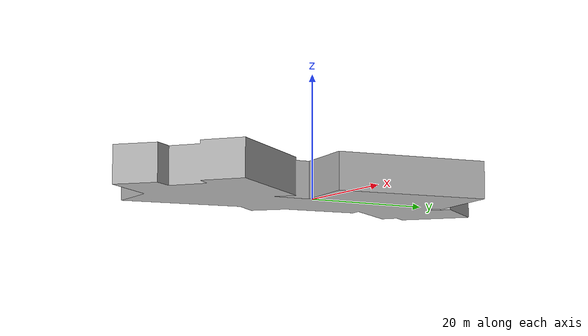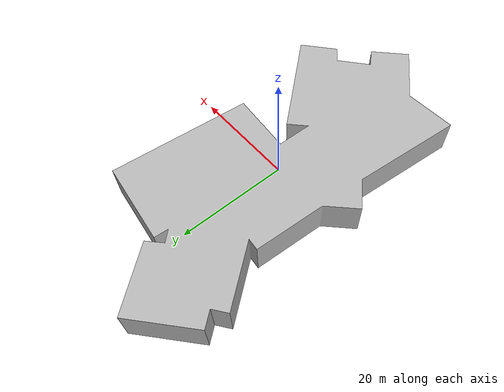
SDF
<?xml version="1.0" ?>
<sdf version="1.7">
  <model name="building_3128_assumed_a_camara_municipal">
    <static>true</static>
    <link name="building_link">
      <visual name="building_visual">
        <geometry>
          <mesh>
            <uri>model://building_3128_assumed_a_camara_municipal/meshes/construction_3128_assumed_A_Camara_municipal_h6m.obj</uri>
          </mesh>
        </geometry>
      </visual>
    <collision name="building_collision">
      <geometry>
        <mesh>
          <uri>model://building_3128_assumed_a_camara_municipal/meshes/construction_3128_assumed_A_Camara_municipal_h6m.obj</uri>
        </mesh>
      </geometry>
    </collision>
    </link>
  </model>
</sdf>
